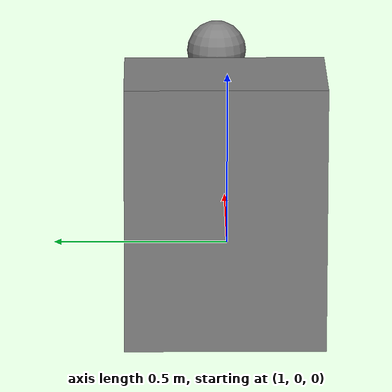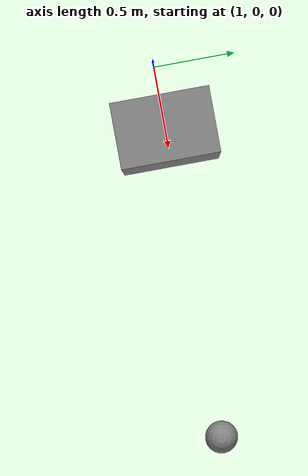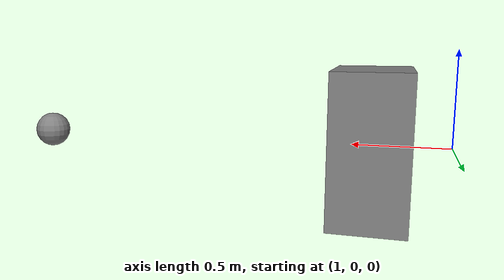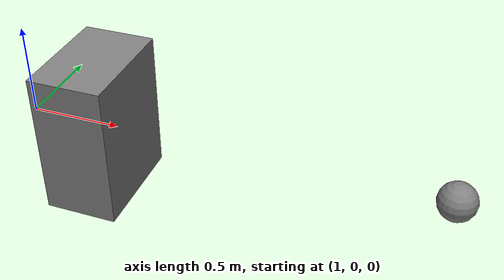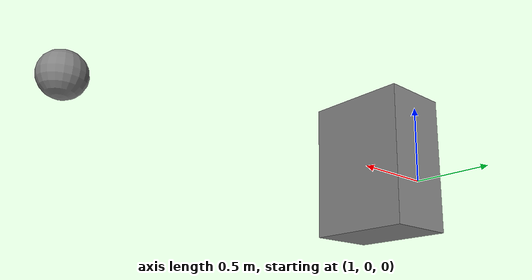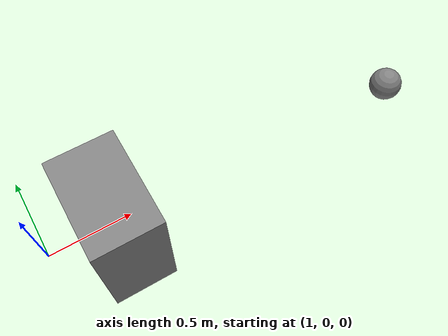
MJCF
<mujoco model="hierarchy">
  <worldbody>
    <body name="base" pos="1 0 0">
      <inertial mass="3" diaginertia="1 1 1"/>
      <joint name="base_slide" type="slide" pos="0.2 0 0" axis="1 0 0"/>
      <geom name="base_box" type="box" size="0.2 0.3 0.4" pos="0.4 0 0"/>
      <body name="tip" pos="2 0 0">
        <inertial pos="0.1 0 0" mass="1" diaginertia="0.1 0.1 0.1"/>
        <joint name="tip_hinge" pos="0.1 0 0" axis="0 0 1"/>
        <geom name="tip_ball" type="sphere" size="0.1" pos="0.3 0 0"/>
      </body>
    </body>
  </worldbody>
</mujoco>
